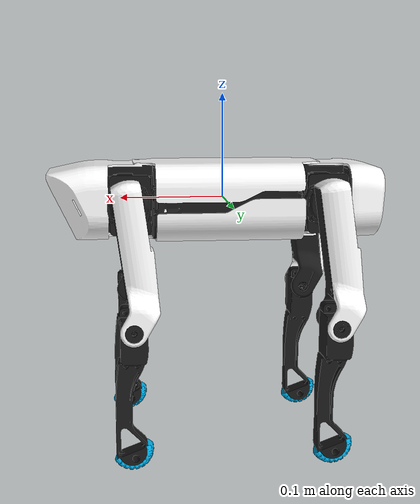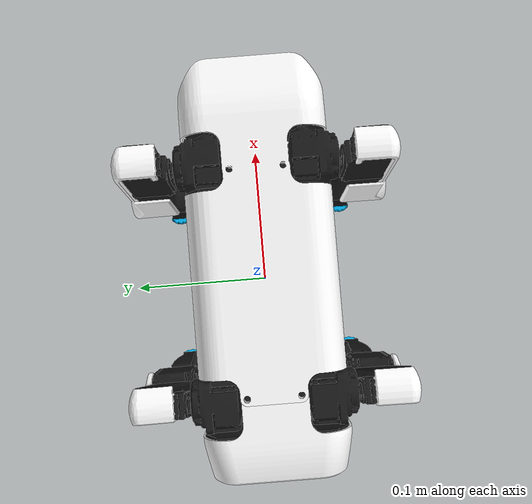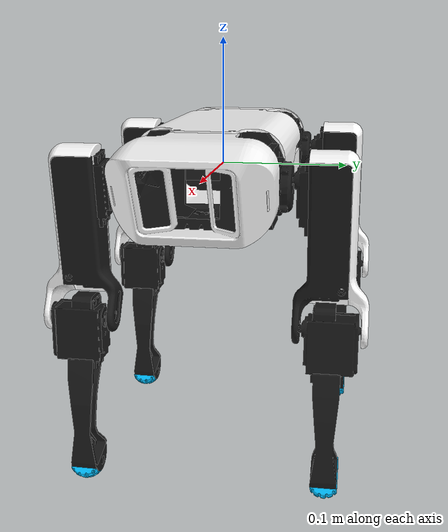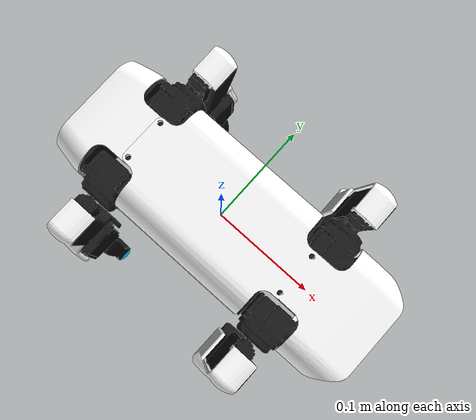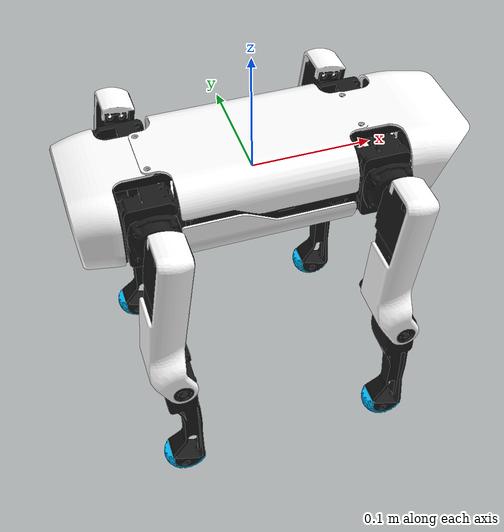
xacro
<?xml version="1.0"?>
<robot xmlns:xacro="http://www.ros.org/wiki/xacro" name="spot_micro_rviz">

    <material name="shell_color">
        <color rgba="1 1 1 1" />
    </material>
    <material name="body_color">
        <color rgba="0.1 0.1 0.1 1" />
    </material>
    <material name="foot_color">
        <color rgba="0 0.75 1 1" />
    </material>

    <!-- Params -->

    <xacro:property name="body_length" value="0.140" />
    <xacro:property name="body_width" value="0.110" />
    <xacro:property name="body_height" value="0.070" />

    <xacro:property name="front_length" value="0.058" />
    <xacro:property name="rear_length" value="0.040" />

    <xacro:property name="shoulder_length" value="0.044" />
    <xacro:property name="shoulder_width" value="0.038" />

    <xacro:property name="leg_length" value="0.1075" />
    <xacro:property name="foot_length" value="0.130" />

    <xacro:property name="toe_radius" value="0.020" />
    <xacro:property name="toe_width" value="0.020" />
    <xacro:property name="shift" value="0.055" />
    <xacro:property name="shiftx" value="0.093" />
    <xacro:property name="shifty" value="0.039" />

    <!-- Macros -->

    <xacro:macro name="gen_shoulder" params="name left">
        <link name="${name}">
            <visual>
                <xacro:if value="${left}">
                    <geometry>
                        <mesh filename="package://stl/lshoulder.stl" scale="0.001 0.001 0.001" />
                    </geometry>
                    <origin rpy="0 0 3.14159" xyz="0.135 0.015 -0.01" />
                </xacro:if>
                <xacro:unless value="${left}">
                    <geometry>
                        <mesh filename="package://stl/rshoulder.stl" scale="0.001 0.001 0.001" />
                    </geometry>
                    <origin rpy="0 0 3.14159" xyz="0.135 0.095 -0.01" />
                </xacro:unless>
                <material name="body_color" />
            </visual>
            <collision>
                <geometry>
                    <box size="${shoulder_length} ${shoulder_width} ${body_height}" />
                </geometry>
                <origin rpy="0 0 0" xyz="0 0 0" />
            </collision>
            <inertial>
                <mass value="0.10" />
                <inertia ixx="100" ixy="0" ixz="0" iyy="100" iyz="0" izz="100" />
            </inertial>
        </link>
    </xacro:macro>

    <xacro:macro name="gen_shoulder_joint" params="pos shiftx shifty">
        <joint name="${pos}_shoulder" type="revolute">
            <parent link="base_link" />
            <child link="${pos}_shoulder_link" />
            <axis xyz="1 0 0" />
            <origin rpy="0 0 0" xyz="${shiftx} ${shifty} 0" />
            <limit effort="1000.0" lower="-0.548" upper="0.548" velocity="0.7" />
            <dynamics damping="0.0" friction="0.5" />
        </joint>
    </xacro:macro>

    <xacro:macro name="gen_leg" params="name left">
        <link name="${name}_cover">
            <visual>
                <xacro:if value="${left}">
                    <geometry>
                        <mesh filename="package://stl/larm_cover.stl" scale="0.001 0.001 0.001" />
                    </geometry>
                    <origin rpy="0 -0.139 3.14159" xyz="0.130 -0.040 -0.025" />
                </xacro:if>
                <xacro:unless value="${left}">
                    <geometry>
                        <mesh filename="package://stl/rarm_cover.stl" scale="0.001 0.001 0.001" />
                    </geometry>
                    <origin rpy="0 -0.139 3.14159" xyz="0.130 0.15 -0.025" />
                </xacro:unless>
                <material name="shell_color" />
            </visual>
        </link>
        <link name="${name}">
            <visual>
                <xacro:if value="${left}">
                    <geometry>
                        <mesh filename="package://stl/larm.stl" scale="0.001 0.001 0.001" />
                    </geometry>
                    <origin rpy="0 -0.139 3.14159" xyz="0.130 -0.040 -0.025" />
                </xacro:if>
                <xacro:unless value="${left}">
                    <geometry>
                        <mesh filename="package://stl/rarm.stl" scale="0.001 0.001 0.001" />
                    </geometry>
                    <origin rpy="0 -0.139 3.14159" xyz="0.130 0.15 -0.025" />
                </xacro:unless>
                <material name="body_color" />
      </visual>
      <collision>
        <origin rpy="0.0 0.0 0.0" xyz="0.0 0.0 -0.050"/>
        <geometry>
          <box size="0.028 0.036 ${leg_length}"/>
        </geometry>
      </collision>
      <inertial>
        <mass value="0.15"/>
        <inertia ixx="1000" ixy="0" ixz="0" iyy="1000" iyz="0" izz="1000" />
      </inertial>
    </link>
  </xacro:macro>

  <xacro:macro name="gen_leg_joint" params="pos shift">
    <joint name="${pos}_leg" type="revolute">
      <parent link="${pos}_shoulder_link"/>
      <child link="${pos}_leg_link"/>
      <axis xyz="0 1 0"/>
      <origin rpy="0 0 0" xyz="0 ${shift} 0"/>
      <limit effort="1000.0" lower="-2.666" upper="1.548" velocity="0.5"/>
      <dynamics damping="0.0" friction="0.0"/>
    </joint>

    <joint name="${pos}_leg_cover_joint" type="fixed">
    <parent link="${pos}_leg_link"/>
    <child link="${pos}_leg_link_cover"/>
        <origin xyz="0 0 0"/>
  </joint>
  </xacro:macro>

  <xacro:macro name="gen_foot" params="name left">
    <link name="${name}">
      <visual>
        <xacro:if value="${left}">
        <geometry>
                        <mesh filename="package://stl/lfoot.stl" scale="0.001 0.001 0.001" />
        </geometry>
                    <origin rpy="0 0 3.14159" xyz="0.120 -0.04 0.1" />
        </xacro:if>
        <xacro:unless value="${left}">
        <geometry>
                        <mesh filename="package://stl/rfoot.stl" scale="0.001 0.001 0.001" />
        </geometry>
                    <origin rpy="0 0 3.14159" xyz="0.120 0.15 0.1" />
        </xacro:unless>
                <material name="body_color" />
      </visual>
      <collision>
        <geometry>
          <box size="0.026 0.020 ${foot_length}"/>
        </geometry>
        <origin rpy="0.0 0.0 0.0" xyz="0.0 0.0 -0.050"/>
      </collision>
      <inertial>
        <mass value="0.1"/>
        <inertia ixx="1000" ixy="0" ixz="0" iyy="1000" iyz="0" izz="1000" />
      </inertial>
    </link>
  </xacro:macro>

  <xacro:macro name="gen_foot_joint" params="pos">
    <joint name="${pos}_foot" type="revolute">
      <parent link="${pos}_leg_link"/>
      <child link="${pos}_foot_link"/>
      <axis xyz="0 1 0"/>
      <origin rpy="0 0 0" xyz="0 0 -${leg_length}"/>
      <limit effort="1000.0" lower="-2.6" upper="0.1" velocity="0.5"/>
      <dynamics damping="0.0" friction="0.5"/>
    </joint>
  </xacro:macro>

  <xacro:macro name="gen_toe" params="name">
    <link name="${name}">
      <visual>
        <geometry>
                    <mesh filename="package://stl/foot.stl" scale="0.001 0.001 0.001" />
        </geometry>
                <origin rpy="0 -0.40010 3.14159" xyz="0.00 0.01 0.015" />
                <material name="foot_color" />
      </visual>
      <collision>
        <geometry>
          <sphere radius="${toe_radius}" />
        </geometry>
        <origin rpy="0 0 0" xyz="0 0 ${toe_radius}"/>
        <contact_coefficients mu="1.1" />
      </collision>
      <inertial>
        <mass value="0.05"/>
        <inertia ixx="1000" ixy="0" ixz="0" iyy="1000" iyz="0" izz="1000" />
      </inertial>
    </link>
  </xacro:macro>

 <xacro:macro name="gen_toe_joint" params="pos">
    <joint name="${pos}_toe" type="fixed">
      <parent link="${pos}_foot_link"/>
      <child link="${pos}_toe_link"/>
      <origin xyz="0 0 -${foot_length}"/>
    </joint>
  </xacro:macro>

  <xacro:macro name="gen_full_leg_joint" params="pos shiftx shifty shift left">
    <xacro:gen_shoulder name="${pos}_shoulder_link" left="${left}"/>
    <xacro:gen_leg name="${pos}_leg_link" left="${left}"/>
    <xacro:gen_foot name="${pos}_foot_link" left="${left}"/>
    <xacro:gen_toe name="${pos}_toe_link"/>

    <xacro:gen_shoulder_joint pos="${pos}" shiftx="${shiftx}" shifty="${shifty}"/>
    <xacro:gen_leg_joint pos="${pos}" shift="${shift}"/>
    <xacro:gen_foot_joint pos="${pos}"/>
    <xacro:gen_toe_joint pos="${pos}"/>
  </xacro:macro>

    <!-- Robot Body -->

  <link name="base_link">
    <visual>
      <geometry>
                <mesh filename="package://stl/mainbody.stl" scale="0.001 0.001 0.001" />
      </geometry>
            <material name="body_color" />
      <origin rpy="0 0 0" xyz="-0.042 -0.055 -0.010"/>
    </visual>
    <collision>
      <geometry>
        <box size="${body_length} ${body_width} ${body_height}"/>
      </geometry>
      <origin rpy="0 0 0" xyz="0 0 0"/>
    </collision>
    <inertial>
      <mass value="2.80"/>
      <inertia ixx="100" ixy="0" ixz="0" iyy="100" iyz="0" izz="100" />
    </inertial>
  </link>

  <link name="rear_link">
    <visual>
      <geometry>
                <mesh filename="package://stl/backpart.stl" scale="0.001 0.001 0.001" />
      </geometry>
            <origin rpy="0 0 3.14159" xyz="0.04 0.055 -0.010" />
            <material name="shell_color" />
    </visual>
    <collision>
      <geometry>
        <box size="${rear_length} ${body_width} ${body_height}"/>
      </geometry>
      <origin rpy="0 0 0" xyz="0.135 0 0"/>
    </collision>
    <inertial>
      <mass value="0.20"/>
      <inertia ixx="100" ixy="0" ixz="0" iyy="100" iyz="0" izz="100" />
    </inertial>
  </link>
  <joint name="base_rear" type="fixed">
    <parent link="base_link"/>
    <child link="rear_link"/>
  </joint>

  <link name="front_link">
    <visual>
      <geometry>
                <mesh filename="package://stl/frontpart.stl" scale="0.001 0.001 0.001" />
      </geometry>
            <origin rpy="0 0 3.14159" xyz="0.040 0.055 -0.010" />
            <material name="shell_color" />
    </visual>
    <collision>
      <geometry>
        <box size="${front_length} ${body_width} ${body_height}"/>
      </geometry>
      <origin rpy="0 0 0" xyz="-0.145 0 0"/>
    </collision>
    <inertial>
      <mass value="0.20"/>
      <inertia ixx="100" ixy="0" ixz="0" iyy="100" iyz="0" izz="100" />
    </inertial>
  </link>
  <joint name="base_front" type="fixed">
    <parent link="base_link"/>
    <child link="front_link"/>
  </joint>

    <!-- create Legs -->

  <xacro:gen_full_leg_joint pos="front_left" shiftx="${shiftx}" shifty="${shifty}" shift="${shift}" left="true"/>
  <xacro:gen_full_leg_joint pos="front_right" shiftx="${shiftx}" shifty="-${shifty}" shift="-${shift}" left="false"/>
  <xacro:gen_full_leg_joint pos="rear_left" shiftx="-${shiftx}" shifty="${shifty}" shift="${shift}" left="true"/>
  <xacro:gen_full_leg_joint pos="rear_right" shiftx="-${shiftx}" shifty="-${shifty}" shift="-${shift}" left="false"/>

</robot>
